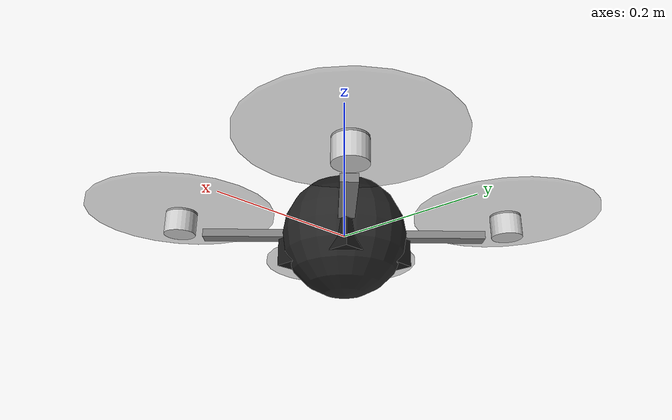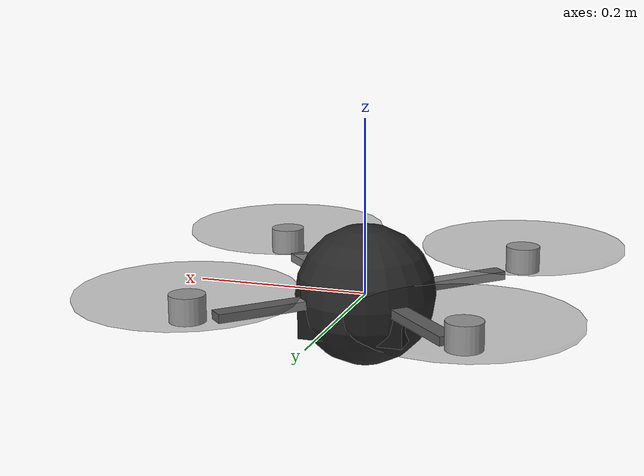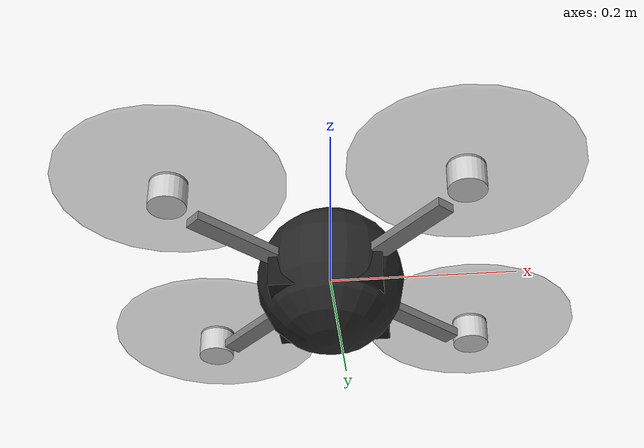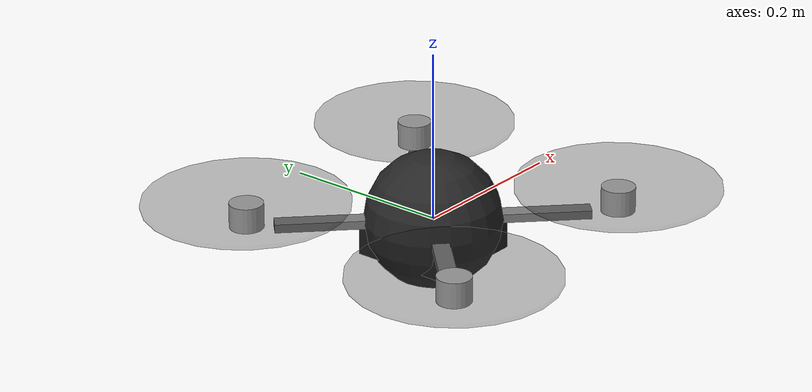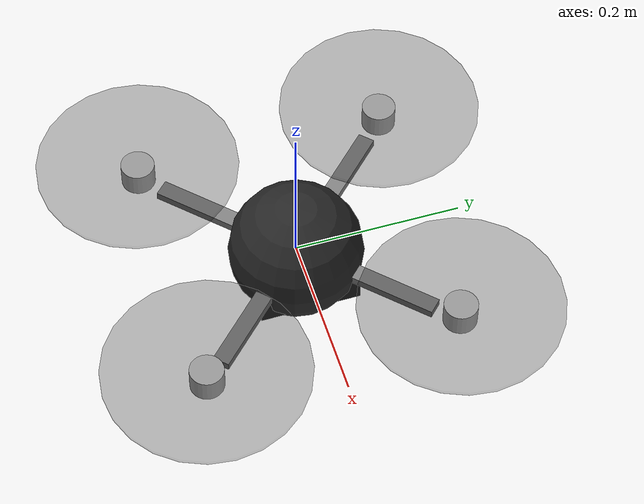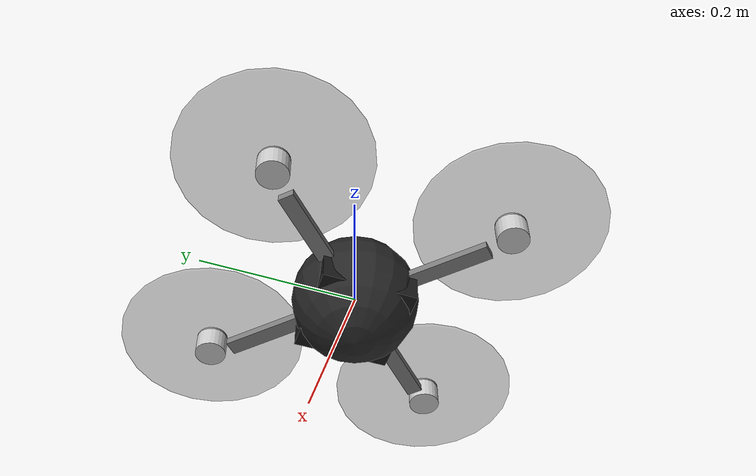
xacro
<?xml version="1.0"?>
<robot name="swarm_drone" xmlns:xacro="http://ros.org/wiki/xacro">
  <xacro:arg name="robot_name" default="drone"/>
  <xacro:arg name="base_color" default="0.1 0.1 0.1 1"/>

  <!-- Drone Body (Main Chassis) -->
  <link name="base_link">
    <!-- Center Sphere / Dome -->
    <visual>
      <origin xyz="0 0 0" rpy="0 0 0" />
      <geometry>
        <sphere radius="0.08" />
      </geometry>
      <material name="dark_gray">
        <color rgba="0.15 0.15 0.15 1"/>
      </material>
    </visual>
    <!-- Lower body box (Dynamic Accent Color) -->
    <visual>
      <origin xyz="0 0 -0.02" rpy="0 0 0" />
      <geometry>
        <box size="0.12 0.12 0.04" />
      </geometry>
      <material name="accent_color">
        <color rgba="$(arg base_color)"/>
      </material>
    </visual>

    <collision>
      <geometry>
        <sphere radius="0.1" />
      </geometry>
    </collision>
    <inertial>
      <mass value="1.0" />
      <inertia ixx="0.01" ixy="0.0" ixz="0.0" iyy="0.01" iyz="0.0" izz="0.02" />
    </inertial>
  </link>

  <!-- Arms / Propellers to make it look like a drone -->
  <xacro:macro name="rotor" params="prefix pos_x pos_y angle">
    <!-- Arm connecting body to rotor -->
    <link name="${prefix}_arm_link">
      <visual>
        <!-- Arm geometry: long thin box extending outward -->
        <origin xyz="${pos_x/2} ${pos_y/2} 0.0" rpy="0 0 ${angle}" />
        <geometry>
          <box size="0.15 0.02 0.01" />
        </geometry>
        <material name="light_gray">
          <color rgba="0.5 0.5 0.5 1"/>
        </material>
      </visual>
    </link>
    <joint name="${prefix}_arm_joint" type="fixed">
      <parent link="base_link" />
      <child link="${prefix}_arm_link" />
      <origin xyz="0 0 0" rpy="0 0 0" />
    </joint>

    <!-- Rotor Base (Motor) -->
    <link name="${prefix}_motor_link">
      <visual>
        <origin xyz="0 0 0" rpy="0 0 0" />
        <geometry>
          <cylinder radius="0.02" length="0.03" />
        </geometry>
        <material name="silver">
          <color rgba="0.8 0.8 0.8 1"/>
        </material>
      </visual>
    </link>
    <joint name="${prefix}_motor_joint" type="fixed">
      <parent link="${prefix}_arm_link" />
      <child link="${prefix}_motor_link" />
      <origin xyz="${pos_x} ${pos_y} 0.015" rpy="0 0 0" />
    </joint>

    <!-- Rotor Disc (Propeller) -->
    <link name="${prefix}_rotor_link">
      <visual>
        <origin xyz="0 0 0" rpy="0 0 0" />
        <geometry>
          <cylinder radius="0.12" length="0.005" />
        </geometry>
        <material name="translucent_black">
          <color rgba="0.1 0.1 0.1 0.3"/>
        </material>
      </visual>
    </link>
    <joint name="${prefix}_rotor_joint" type="fixed">
      <parent link="${prefix}_motor_link" />
      <child link="${prefix}_rotor_link" />
      <origin xyz="0 0 0.015" rpy="0 0 0" />
    </joint>
  </xacro:macro>

  <!-- Instantiate 4 rotors at 45 degree angles -->
  <!-- distance approx 0.15 * sqrt(2) = 0.21 -->
  <!-- Actually just pos_x=0.15, pos_y=0.15 means length=0.21. Angle is pi/4 -->
  <xacro:rotor prefix="fl" pos_x="0.15" pos_y="0.15" angle="0.785398" />
  <xacro:rotor prefix="fr" pos_x="0.15" pos_y="-0.15" angle="-0.785398" />
  <xacro:rotor prefix="bl" pos_x="-0.15" pos_y="0.15" angle="2.35619" />
  <xacro:rotor prefix="br" pos_x="-0.15" pos_y="-0.15" angle="-2.35619" />

  <!-- Gazebo plugins -->
  <gazebo>
    <plugin
      filename="gz-sim-velocity-control-system"
      name="gz::sim::systems::VelocityControl">
      <topic>/$(arg robot_name)/cmd_vel</topic>
    </plugin>

    <!-- Pose publisher for feedback -->
    <plugin
      filename="gz-sim-pose-publisher-system"
      name="gz::sim::systems::PosePublisher">
      <publish_link_pose>true</publish_link_pose>
      <publish_model_pose>true</publish_model_pose>
      <publish_nested_model_pose>true</publish_nested_model_pose>
      <use_pose_vector_msg>true</use_pose_vector_msg>
      <update_frequency>50</update_frequency>
    </plugin>
  </gazebo>

  <!-- Gazebo Material Mappings -->
  <gazebo reference="base_link">
    <!-- Disable gravity for the abstract algorithmic drone so it acts like it has a perfect Z-hold -->
    <gravity>false</gravity>
    <sensor name="camera" type="camera">
      <pose>0.1 0 0.05 0 0 0</pose>
      <camera>
        <horizontal_fov>1.047</horizontal_fov>
        <image>
          <width>640</width>
          <height>480</height>
        </image>
        <clip>
          <near>0.1</near>
          <far>100</far>
        </clip>
      </camera>
      <always_on>1</always_on>
      <update_rate>30</update_rate>
      <visualize>true</visualize>
      <topic>/$(arg robot_name)/camera/image</topic>
    </sensor>
  </gazebo>

  <gazebo reference="fl_rotor_link">
    <material>Gazebo/Black</material>
  </gazebo>
  <gazebo reference="fr_rotor_link">
    <material>Gazebo/Black</material>
  </gazebo>
  <gazebo reference="bl_rotor_link">
    <material>Gazebo/Black</material>
  </gazebo>
  <gazebo reference="br_rotor_link">
    <material>Gazebo/Black</material>
  </gazebo>
</robot>
